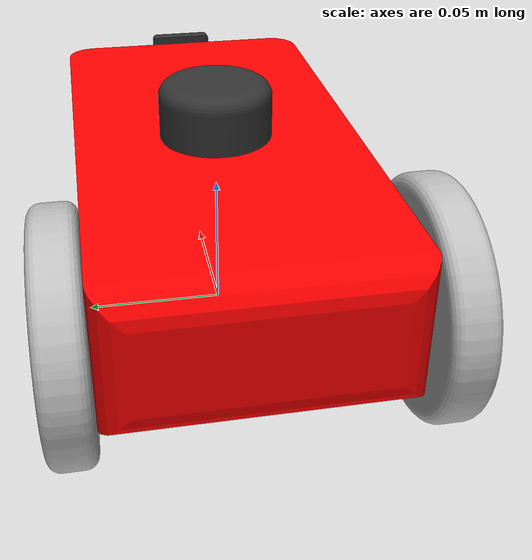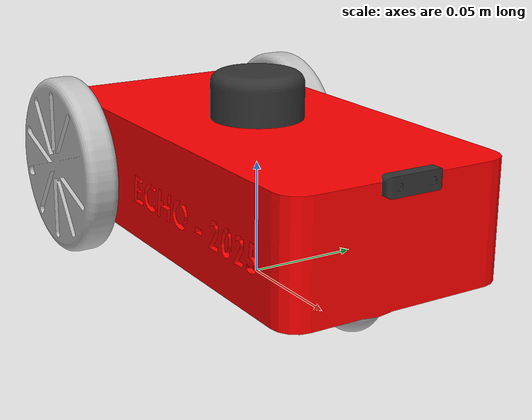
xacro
<?xml version="1.0" encoding="utf-8"?>

<robot name="echo_v1" xmlns:xacro="http://ros.org/wiki/xacro">

  <!-- Include materials xacro -->
  <xacro:include filename="$(find echo_sim_v1)/urdf/materials.xacro"/>

  <!-- Base Footprint -->
  <link name="base_footprint"/>

  <joint name="base_footprint_to_base_link" type="fixed">
    <origin xyz="0 0 0.02" rpy="-1.5708 0 0"/>
    <parent link="base_footprint"/>
    <child link="base_link"/>
  </joint>

  <!-- Base Link -->
  <link name="base_link">
    <inertial>
      <origin xyz="0.00088588 5.7031E-05 0.02478" rpy="0 0 0"/>
      <mass value="0.99833"/>
      <inertia ixx="0.0010305" ixy="-1.7168E-06" ixz="1.5313E-05"
               iyy="0.0035021" iyz="1.7459E-07" izz="0.0041088"/>
    </inertial>
    <visual>
      <origin xyz="0 0 0" rpy="0 0 0"/>
      <geometry>
        <mesh filename="package://echo_sim_v1/meshes/base_link.STL"/>
      </geometry>
      <material name="red"/>
    </visual>
    <collision>
      <origin xyz="0 0 0" rpy="0 0 0"/>
      <geometry>
        <mesh filename="package://echo_sim_v1/meshes/base_link.STL"/>
      </geometry>
    </collision>
  </link>

  <!-- Left Wheel -->
  <link name="left_wheel_link">
    <inertial>
      <origin xyz="-1.3878E-17 0.0075 0" rpy="0 0 0"/>
      <mass value="0.073711"/>
      <inertia ixx="3.0207E-05" ixy="-3.1866E-38" ixz="1.075E-37"
               iyy="5.7735E-05" iyz="1.0613E-38" izz="3.0207E-05"/>
    </inertial>
    <visual>
      <origin xyz="0 0 0" rpy="0 0 0"/>
      <geometry>
        <mesh filename="package://echo_sim_v1/meshes/left_wheel_link.STL"/>
      </geometry>
      <material name="silver"/>
    </visual>
    <collision>
      <origin xyz="0 0 0" rpy="0 0 0"/>
      <geometry>
        <mesh filename="package://echo_sim_v1/meshes/left_wheel_link.STL"/>
      </geometry>
    </collision>
  </link>

  <joint name="base_link_to_left_wheel" type="continuous">
    <origin xyz="-0.07 -0.02 0.05" rpy="-1.5708 0 -1.5708"/>
    <parent link="base_link"/>
    <child link="left_wheel_link"/>
    <axis xyz="0 -1 0"/>
  </joint>

  <!-- Right Wheel -->
  <link name="right_wheel_link">
    <inertial>
      <origin xyz="-1.3878E-17 -0.0075 0" rpy="0 0 0"/>
      <mass value="0.073711"/>
      <inertia ixx="3.0207E-05" ixy="-3.1866E-38" ixz="1.075E-37"
               iyy="5.7735E-05" iyz="1.0613E-38" izz="3.0207E-05"/>
    </inertial>
    <visual>
      <origin xyz="0 0 0" rpy="0 0 0"/>
      <geometry>
        <mesh filename="package://echo_sim_v1/meshes/right_wheel_link.STL"/>
      </geometry>
      <material name="silver"/>
    </visual>
    <collision>
      <origin xyz="0 0 0" rpy="0 0 0"/>
      <geometry>
        <mesh filename="package://echo_sim_v1/meshes/right_wheel_link.STL"/>
      </geometry>
    </collision>
  </link>

  <joint name="base_link_to_right_wheel" type="continuous">
    <origin xyz="-0.07 -0.02 -0.05" rpy="1.5708 0 0"/>
    <parent link="base_link"/>
    <child link="right_wheel_link"/>
    <axis xyz="0 1 0"/>
  </joint>

  <!-- Caster Wheel -->
  <link name="caster_wheel_link">
    <inertial>
      <origin xyz="1.3878E-17 -5.5511E-17 0.0045" rpy="0 0 0"/>
      <mass value="0.0036191"/>
      <inertia ixx="1.3517E-07" ixy="-1.3235E-23" ixz="-8.7993E-24"
               iyy="1.3517E-07" iyz="-5.2645E-22" izz="2.0846E-07"/>
    </inertial>
    <visual>
      <origin xyz="0 0 0" rpy="0 0 0"/>
      <geometry>
        <mesh filename="package://echo_sim_v1/meshes/caster_wheel_link.STL"/>
      </geometry>
      <material name="silver"/>
    </visual>
    <collision>
      <origin xyz="0 0 0" rpy="0 0 0"/>
      <geometry>
        <mesh filename="package://echo_sim_v1/meshes/caster_wheel_link.STL"/>
      </geometry>
    </collision>
  </link>

  <joint name="base_link_to_caster_wheel" type="fixed">
    <origin xyz="0.07 0.008 0" rpy="1.5708 -1.2948 3.1416"/>
    <parent link="base_link"/>
    <child link="caster_wheel_link"/>
    <axis xyz="0 0 0"/>
  </joint>

  <!-- Lidar -->
  <link name="lidar_link">
    <inertial>
      <origin xyz="-2.6195E-17 -1.1719E-17 0.0097699" rpy="0 0 0"/>
      <mass value="0.024496"/>
      <inertia ixx="3.1849E-06" ixy="3.1764E-22" ixz="-1.8127E-23"
               iyy="3.1849E-06" iyz="-3.5234E-23" izz="4.7979E-06"/>
    </inertial>
    <visual>
      <origin xyz="0 0 0" rpy="0 0 0"/>
      <geometry>
        <mesh filename="package://echo_sim_v1/meshes/lidar_link.STL"/>
      </geometry>
      <material name="dark_grey"/>
    </visual>
    <collision>
      <origin xyz="0 0 0" rpy="0 0 0"/>
      <geometry>
        <mesh filename="package://echo_sim_v1/meshes/lidar_link.STL"/>
      </geometry>
    </collision>
  </link>

  <joint name="base_link_to_lidar" type="fixed">
    <origin xyz="0 -0.05 0" rpy="1.5708 0.30388 0"/>
    <parent link="base_link"/>
    <child link="lidar_link"/>
    <axis xyz="0 0 0"/>
  </joint>

  <!-- Camera  -->
  <link name="camera_link">
    <inertial>
      <origin xyz="0.0024702 4.5609E-18 -6.9389E-18" rpy="0 0 0"/>
      <mass value="0.00094737"/>
      <inertia ixx="5.0737E-08" ixy="5.1013E-24" ixz="5.311E-25"
               iyy="6.9275E-09" iyz="7.8632E-15" izz="4.7598E-08"/>
    </inertial>
    <visual>
      <origin xyz="0 0 0" rpy="0 0 0"/>
      <geometry>
        <mesh filename="package://echo_sim_v1/meshes/camera_link.STL"/>
      </geometry>
      <material name="dark_grey"/>
    </visual>
    <collision>
      <origin xyz="0 0 0" rpy="0 0 0"/>
      <geometry>
        <mesh filename="package://echo_sim_v1/meshes/camera_link.STL"/>
      </geometry>
    </collision>
  </link>

  <joint name="base_link_to_camera" type="fixed">
    <origin xyz="0.1 -0.049 0" rpy="1.5708 0 0"/>
    <parent link="base_link"/>
    <child link="camera_link"/>
    <axis xyz="0 0 0"/>
  </joint>

</robot>

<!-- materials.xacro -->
<robot xmlns:xacro="http://ros.org/wiki/xacro">

  <!-- Red color -->
  <material name="red">
    <color rgba="1.0 0.0 0.0 1.0"/>
  </material>

  <!-- Silver color -->
  <material name="silver">
    <color rgba="0.75 0.75 0.75 1.0"/>
  </material>

  <!-- Black color -->
  <material name="black">
    <color rgba="0.0 0.0 0.0 1.0"/>
  </material>

  <!-- Dark Grey color -->
<material name="dark_grey">
  <color rgba="0.2 0.2 0.2 1.0"/>
</material>

</robot>
